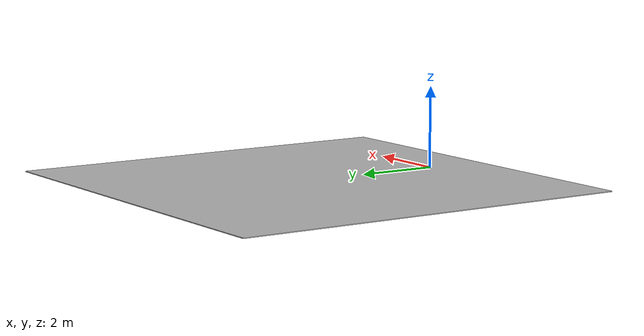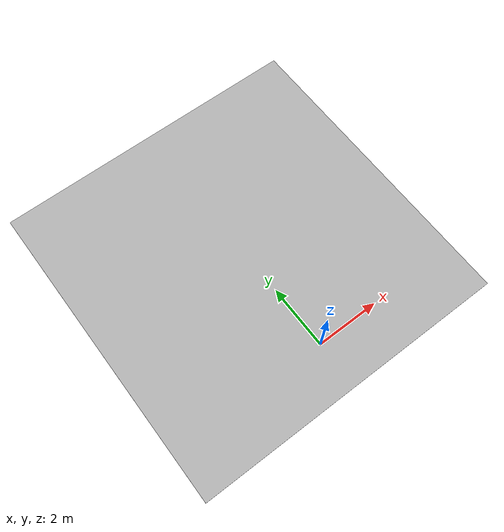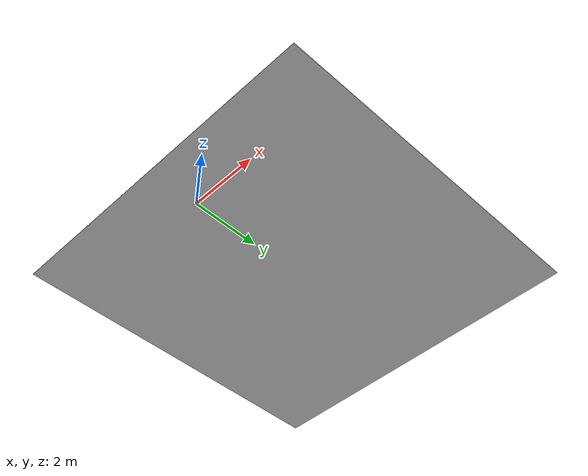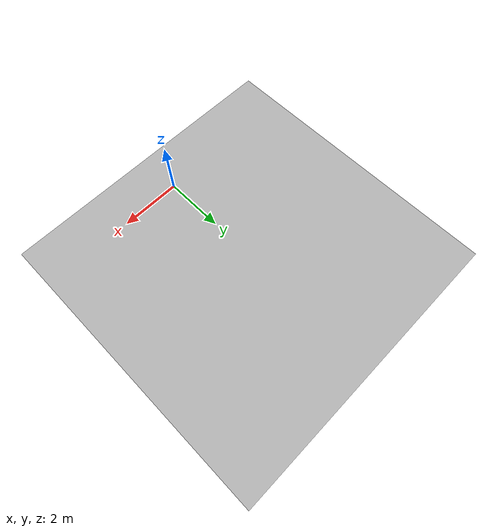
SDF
<?xml version='1.0'?>
<sdf version='1.7'>
  <model name='GroundPlane_Desert_Physical'>
    <link name='ground'>
      <pose>0 3.5 0 0 -0 0</pose>
      <inertial>
        <inertia>
          <ixx>506.983</ixx>
          <ixy>0</ixy>
          <ixz>0</ixz>
          <iyy>506.983</iyy>
          <iyz>0</iyz>
          <izz>1013.33</izz>
        </inertia>
        <mass>1520</mass>
        <pose>0 0 0 0 -0 0</pose>
      </inertial>
      <self_collide>0</self_collide>
      <enable_wind>0</enable_wind>
      <kinematic>0</kinematic>
      <gravity>0</gravity>
      <visual name='ground_visual'>
        <cast_shadows>0</cast_shadows>
        <pose>0 0 -0.01 0 -0 0</pose>
        <geometry>
          <box>
            <size>10 10 0.02</size>
          </box>
        </geometry>
        <material>
          <script>
            <uri>model://GroundPlane_Desert_Physical/materials/scripts</uri>
            <uri>model://GroundPlane_Desert_Physical/materials/textures</uri>
            <name>groundMat/Dirt</name>
          </script>
          <shader type='pixel'>
            <normal_map>__default__</normal_map>
          </shader>
          <emissive>0 0 0 1</emissive>
        </material>
        <pose>0 0 0 0 -0 0</pose>
        <transparency>0</transparency>
      </visual>
      <collision name='ground_collision'>
        <laser_retro>0</laser_retro>
        <max_contacts>10</max_contacts>
        <pose>0 -3.5 -0.025 0 -0 0</pose>
        <geometry>
          <box>
            <size>1 1 0.05</size>
          </box>
        </geometry>
        <surface>
          <friction>
            <ode>
              <mu>100000</mu>
              <mu2>100000</mu2>
              <fdir1>0 0 0</fdir1>
              <slip1>0</slip1>
              <slip2>0</slip2>
            </ode>
            <torsional>
              <coefficient>1</coefficient>
              <patch_radius>0</patch_radius>
              <surface_radius>0</surface_radius>
              <use_patch_radius>1</use_patch_radius>
              <ode>
                <slip>0</slip>
              </ode>
            </torsional>
          </friction>
          <bounce>
            <restitution_coefficient>0</restitution_coefficient>
            <threshold>1e+06</threshold>
          </bounce>
          <contact>
            <collide_without_contact>0</collide_without_contact>
            <collide_without_contact_bitmask>1</collide_without_contact_bitmask>
            <collide_bitmask>65535</collide_bitmask>
            <ode>
              <soft_cfm>0</soft_cfm>
              <soft_erp>0.2</soft_erp>
              <kp>1e+13</kp>
              <kd>1</kd>
              <max_vel>0.01</max_vel>
              <min_depth>0</min_depth>
            </ode>
            <bullet>
              <split_impulse>1</split_impulse>
              <split_impulse_penetration_threshold>-0.01</split_impulse_penetration_threshold>
              <soft_cfm>0</soft_cfm>
              <soft_erp>0.2</soft_erp>
              <kp>1e+13</kp>
              <kd>1</kd>
            </bullet>
          </contact>
        </surface>
      </collision>
    </link>
    <link name='wall_right'>
      <inertial>
        <mass>1</mass>
        <inertia>
          <ixx>0.166667</ixx>
          <ixy>0</ixy>
          <ixz>0</ixz>
          <iyy>0.166667</iyy>
          <iyz>0</iyz>
          <izz>0.166667</izz>
        </inertia>
        <pose>0 0 0 0 -0 0</pose>
      </inertial>
      <pose>0.5 0 0 0 -0 0</pose>
      <gravity>1</gravity>
      <self_collide>0</self_collide>
      <kinematic>0</kinematic>
      <enable_wind>0</enable_wind>
      <collision name='collision'>
        <laser_retro>0</laser_retro>
        <max_contacts>10</max_contacts>
        <pose>0 0 0.01 0 -0 0</pose>
        <geometry>
          <box>
            <size>0.01 1 0.02</size>
          </box>
        </geometry>
        <surface>
          <friction>
            <ode>
              <mu>1</mu>
              <mu2>1</mu2>
              <fdir1>0 0 0</fdir1>
              <slip1>0</slip1>
              <slip2>0</slip2>
            </ode>
            <torsional>
              <coefficient>1</coefficient>
              <patch_radius>0</patch_radius>
              <surface_radius>0</surface_radius>
              <use_patch_radius>1</use_patch_radius>
              <ode>
                <slip>0</slip>
              </ode>
            </torsional>
          </friction>
          <bounce>
            <restitution_coefficient>0</restitution_coefficient>
            <threshold>1e+06</threshold>
          </bounce>
          <contact>
            <collide_without_contact>0</collide_without_contact>
            <collide_without_contact_bitmask>1</collide_without_contact_bitmask>
            <collide_bitmask>1</collide_bitmask>
            <ode>
              <soft_cfm>0</soft_cfm>
              <soft_erp>0.2</soft_erp>
              <kp>1e+13</kp>
              <kd>1</kd>
              <max_vel>0.01</max_vel>
              <min_depth>0</min_depth>
            </ode>
            <bullet>
              <split_impulse>1</split_impulse>
              <split_impulse_penetration_threshold>-0.01</split_impulse_penetration_threshold>
              <soft_cfm>0</soft_cfm>
              <soft_erp>0.2</soft_erp>
              <kp>1e+13</kp>
              <kd>1</kd>
            </bullet>
          </contact>
        </surface>
      </collision>
    </link>
    <link name='wall_front'>
      <inertial>
        <mass>1</mass>
        <inertia>
          <ixx>0.166667</ixx>
          <ixy>0</ixy>
          <ixz>0</ixz>
          <iyy>0.166667</iyy>
          <iyz>0</iyz>
          <izz>0.166667</izz>
        </inertia>
        <pose>0 0 0 0 -0 0</pose>
      </inertial>
      <pose>0 0.5 0 0 -0 1.57</pose>
      <gravity>1</gravity>
      <self_collide>0</self_collide>
      <kinematic>0</kinematic>
      <enable_wind>0</enable_wind>
      <collision name='collision'>
        <laser_retro>0</laser_retro>
        <max_contacts>10</max_contacts>
        <pose>0 0 0.01 0 -0 0</pose>
        <geometry>
          <box>
            <size>0.01 1 0.02</size>
          </box>
        </geometry>
        <surface>
          <friction>
            <ode>
              <mu>1</mu>
              <mu2>1</mu2>
              <fdir1>0 0 0</fdir1>
              <slip1>0</slip1>
              <slip2>0</slip2>
            </ode>
            <torsional>
              <coefficient>1</coefficient>
              <patch_radius>0</patch_radius>
              <surface_radius>0</surface_radius>
              <use_patch_radius>1</use_patch_radius>
              <ode>
                <slip>0</slip>
              </ode>
            </torsional>
          </friction>
          <bounce>
            <restitution_coefficient>0</restitution_coefficient>
            <threshold>1e+06</threshold>
          </bounce>
          <contact>
            <collide_without_contact>0</collide_without_contact>
            <collide_without_contact_bitmask>1</collide_without_contact_bitmask>
            <collide_bitmask>1</collide_bitmask>
            <ode>
              <soft_cfm>0</soft_cfm>
              <soft_erp>0.2</soft_erp>
              <kp>1e+13</kp>
              <kd>1</kd>
              <max_vel>0.01</max_vel>
              <min_depth>0</min_depth>
            </ode>
            <bullet>
              <split_impulse>1</split_impulse>
              <split_impulse_penetration_threshold>-0.01</split_impulse_penetration_threshold>
              <soft_cfm>0</soft_cfm>
              <soft_erp>0.2</soft_erp>
              <kp>1e+13</kp>
              <kd>1</kd>
            </bullet>
          </contact>
        </surface>
      </collision>
    </link>
    <link name='wall_left'>
      <inertial>
        <mass>1</mass>
        <inertia>
          <ixx>0.166667</ixx>
          <ixy>0</ixy>
          <ixz>0</ixz>
          <iyy>0.166667</iyy>
          <iyz>0</iyz>
          <izz>0.166667</izz>
        </inertia>
        <pose>0 0 0 0 -0 0</pose>
      </inertial>
      <pose>-0.5 0 0 0 -0 0</pose>
      <gravity>1</gravity>
      <self_collide>0</self_collide>
      <kinematic>0</kinematic>
      <enable_wind>0</enable_wind>
      <collision name='collision'>
        <laser_retro>0</laser_retro>
        <max_contacts>10</max_contacts>
        <pose>0 0 0.01 0 -0 0</pose>
        <geometry>
          <box>
            <size>0.01 1 0.02</size>
          </box>
        </geometry>
        <surface>
          <friction>
            <ode>
              <mu>1</mu>
              <mu2>1</mu2>
              <fdir1>0 0 0</fdir1>
              <slip1>0</slip1>
              <slip2>0</slip2>
            </ode>
            <torsional>
              <coefficient>1</coefficient>
              <patch_radius>0</patch_radius>
              <surface_radius>0</surface_radius>
              <use_patch_radius>1</use_patch_radius>
              <ode>
                <slip>0</slip>
              </ode>
            </torsional>
          </friction>
          <bounce>
            <restitution_coefficient>0</restitution_coefficient>
            <threshold>1e+06</threshold>
          </bounce>
          <contact>
            <collide_without_contact>0</collide_without_contact>
            <collide_without_contact_bitmask>1</collide_without_contact_bitmask>
            <collide_bitmask>1</collide_bitmask>
            <ode>
              <soft_cfm>0</soft_cfm>
              <soft_erp>0.2</soft_erp>
              <kp>1e+13</kp>
              <kd>1</kd>
              <max_vel>0.01</max_vel>
              <min_depth>0</min_depth>
            </ode>
            <bullet>
              <split_impulse>1</split_impulse>
              <split_impulse_penetration_threshold>-0.01</split_impulse_penetration_threshold>
              <soft_cfm>0</soft_cfm>
              <soft_erp>0.2</soft_erp>
              <kp>1e+13</kp>
              <kd>1</kd>
            </bullet>
          </contact>
        </surface>
      </collision>
    </link>
    <link name='wall_back'>
      <inertial>
        <mass>1</mass>
        <inertia>
          <ixx>0.166667</ixx>
          <ixy>0</ixy>
          <ixz>0</ixz>
          <iyy>0.166667</iyy>
          <iyz>0</iyz>
          <izz>0.166667</izz>
        </inertia>
        <pose>0 0 0 0 -0 0</pose>
      </inertial>
      <pose>0 -0.5 0 0 -0 1.57</pose>
      <gravity>1</gravity>
      <self_collide>0</self_collide>
      <kinematic>0</kinematic>
      <enable_wind>0</enable_wind>
      <collision name='collision'>
        <laser_retro>0</laser_retro>
        <max_contacts>10</max_contacts>
        <pose>0 0 0.01 0 -0 0</pose>
        <geometry>
          <box>
            <size>0.01 1 0.02</size>
          </box>
        </geometry>
        <surface>
          <friction>
            <ode>
              <mu>1</mu>
              <mu2>1</mu2>
              <fdir1>0 0 0</fdir1>
              <slip1>0</slip1>
              <slip2>0</slip2>
            </ode>
            <torsional>
              <coefficient>1</coefficient>
              <patch_radius>0</patch_radius>
              <surface_radius>0</surface_radius>
              <use_patch_radius>1</use_patch_radius>
              <ode>
                <slip>0</slip>
              </ode>
            </torsional>
          </friction>
          <bounce>
            <restitution_coefficient>0</restitution_coefficient>
            <threshold>1e+06</threshold>
          </bounce>
          <contact>
            <collide_without_contact>0</collide_without_contact>
            <collide_without_contact_bitmask>1</collide_without_contact_bitmask>
            <collide_bitmask>1</collide_bitmask>
            <ode>
              <soft_cfm>0</soft_cfm>
              <soft_erp>0.2</soft_erp>
              <kp>1e+13</kp>
              <kd>1</kd>
              <max_vel>0.01</max_vel>
              <min_depth>0</min_depth>
            </ode>
            <bullet>
              <split_impulse>1</split_impulse>
              <split_impulse_penetration_threshold>-0.01</split_impulse_penetration_threshold>
              <soft_cfm>0</soft_cfm>
              <soft_erp>0.2</soft_erp>
              <kp>1e+13</kp>
              <kd>1</kd>
            </bullet>
          </contact>
        </surface>
      </collision>
    </link>
    <joint name='ground_JOINT_0' type='fixed'>
      <parent>ground</parent>
      <child>wall_right</child>
      <pose>0 0 0 0 -0 0</pose>
      <physics>
        <ode>
          <limit>
            <cfm>0</cfm>
            <erp>0.2</erp>
          </limit>
          <suspension>
            <cfm>0</cfm>
            <erp>0.2</erp>
          </suspension>
        </ode>
      </physics>
    </joint>
    <joint name='ground_JOINT_1' type='fixed'>
      <parent>ground</parent>
      <child>wall_front</child>
      <pose>0 0 0 0 -0 0</pose>
      <physics>
        <ode>
          <limit>
            <cfm>0</cfm>
            <erp>0.2</erp>
          </limit>
          <suspension>
            <cfm>0</cfm>
            <erp>0.2</erp>
          </suspension>
        </ode>
      </physics>
    </joint>
    <joint name='ground_JOINT_2' type='fixed'>
      <parent>ground</parent>
      <child>wall_left</child>
      <pose>0 0 0 0 -0 0</pose>
      <physics>
        <ode>
          <limit>
            <cfm>0</cfm>
            <erp>0.2</erp>
          </limit>
          <suspension>
            <cfm>0</cfm>
            <erp>0.2</erp>
          </suspension>
        </ode>
      </physics>
    </joint>
    <joint name='ground_JOINT_3' type='fixed'>
      <parent>ground</parent>
      <child>wall_back</child>
      <pose>0 0 0 0 -0 0</pose>
      <physics>
        <ode>
          <limit>
            <cfm>0</cfm>
            <erp>0.2</erp>
          </limit>
          <suspension>
            <cfm>0</cfm>
            <erp>0.2</erp>
          </suspension>
        </ode>
      </physics>
    </joint>
    <static>1</static>
    <allow_auto_disable>1</allow_auto_disable>
  </model>
</sdf>
